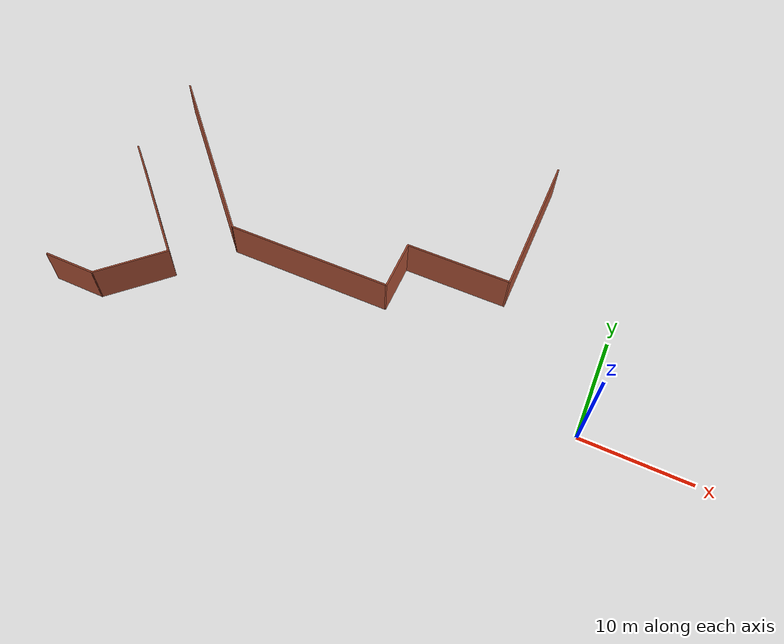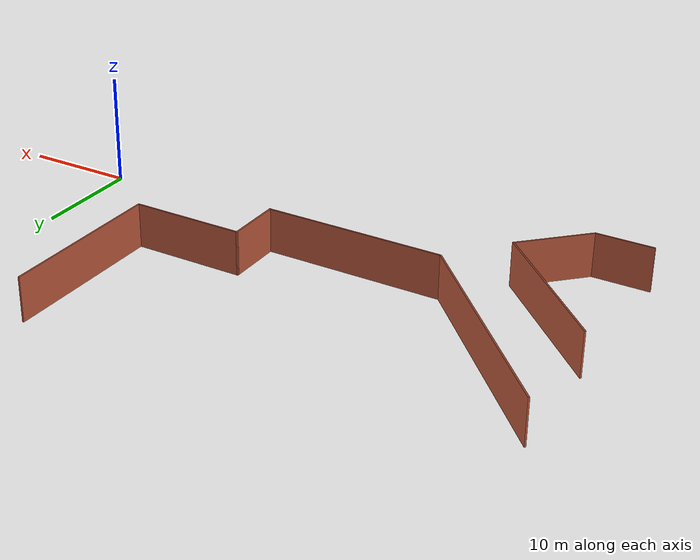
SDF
<?xml version='1.0'?>
<sdf version='1.6'>
  <model name='wall_others_1'>
    <pose frame=''>-25.053 9.98447 0 0 -0 0</pose>
    <link name='Wall_11'>
      <collision name='Wall_11_Collision'>
        <geometry>
          <box>
            <size>20.6683 0.15 4</size>
          </box>
        </geometry>
        <pose frame=''>0 0 2 0 -0 0</pose>
      </collision>
      <visual name='Wall_11_Visual'>
        <pose frame=''>0 0 2 0 -0 0</pose>
        <geometry>
          <box>
            <size>20.6683 0.15 4</size>
          </box>
        </geometry>
        <material>
          <script>
            <uri>file://media/materials/scripts/gazebo.material</uri>
            <name>Gazebo/Bricks</name>
          </script>
          <ambient>1 1 1 1</ambient>
        </material>
        <meta>
          <layer>0</layer>
        </meta>
      </visual>
      <pose frame=''>-17.947 2.51553 0 0 -0 -0.819867</pose>
    </link>
    <link name='Wall_12'>
      <collision name='Wall_12_Collision'>
        <geometry>
          <box>
            <size>16.15 0.15 4</size>
          </box>
        </geometry>
        <pose frame=''>0 0 2 0 -0 0</pose>
      </collision>
      <visual name='Wall_12_Visual'>
        <pose frame=''>0 0 2 0 -0 0</pose>
        <geometry>
          <box>
            <size>16.15 0.15 4</size>
          </box>
        </geometry>
        <material>
          <script>
            <uri>file://media/materials/scripts/gazebo.material</uri>
            <name>Gazebo/Bricks</name>
          </script>
          <ambient>1 1 1 1</ambient>
        </material>
        <meta>
          <layer>0</layer>
        </meta>
      </visual>
      <pose frame=''>-2.94697 -4.98447 0 0 -0 0</pose>
    </link>
    <link name='Wall_13'>
      <collision name='Wall_13_Collision'>
        <geometry>
          <box>
            <size>5.15 0.15 4</size>
          </box>
        </geometry>
        <pose frame=''>0 0 2 0 -0 0</pose>
      </collision>
      <visual name='Wall_13_Visual'>
        <pose frame=''>0 0 2 0 -0 0</pose>
        <geometry>
          <box>
            <size>5.15 0.15 4</size>
          </box>
        </geometry>
        <material>
          <script>
            <uri>file://media/materials/scripts/gazebo.material</uri>
            <name>Gazebo/Bricks</name>
          </script>
          <ambient>1 1 1 1</ambient>
        </material>
        <meta>
          <layer>0</layer>
        </meta>
      </visual>
      <pose frame=''>5.05303 -2.48447 0 0 -0 1.5708</pose>
    </link>
    <link name='Wall_14'>
      <collision name='Wall_14_Collision'>
        <geometry>
          <box>
            <size>10.15 0.15 4</size>
          </box>
        </geometry>
        <pose frame=''>0 0 2 0 -0 0</pose>
      </collision>
      <visual name='Wall_14_Visual'>
        <pose frame=''>0 0 2 0 -0 0</pose>
        <geometry>
          <box>
            <size>10.15 0.15 4</size>
          </box>
        </geometry>
        <material>
          <script>
            <uri>file://media/materials/scripts/gazebo.material</uri>
            <name>Gazebo/Bricks</name>
          </script>
          <ambient>1 1 1 1</ambient>
        </material>
        <meta>
          <layer>0</layer>
        </meta>
      </visual>
      <pose frame=''>10.053 0.015533 0 0 -0 0</pose>
    </link>
    <link name='Wall_16'>
      <collision name='Wall_16_Collision'>
        <geometry>
          <box>
            <size>15.15 0.15 4</size>
          </box>
        </geometry>
        <pose frame=''>0 0 2 0 -0 0</pose>
      </collision>
      <visual name='Wall_16_Visual'>
        <pose frame=''>0 0 2 0 -0 0</pose>
        <geometry>
          <box>
            <size>15.15 0.15 4</size>
          </box>
        </geometry>
        <material>
          <script>
            <uri>file://media/materials/scripts/gazebo.material</uri>
            <name>Gazebo/Bricks</name>
          </script>
          <ambient>1 1 1 1</ambient>
        </material>
        <meta>
          <layer>0</layer>
        </meta>
      </visual>
      <pose frame=''>15.053 7.51553 0 0 -0 1.5708</pose>
    </link>
    <link name='Wall_19'>
      <collision name='Wall_19_Collision'>
        <geometry>
          <box>
            <size>14.2921 0.15 4</size>
          </box>
        </geometry>
        <pose frame=''>0 0 2 0 -0 0</pose>
      </collision>
      <visual name='Wall_19_Visual'>
        <pose frame=''>0 0 2 0 -0 0</pose>
        <geometry>
          <box>
            <size>14.2921 0.15 4</size>
          </box>
        </geometry>
        <material>
          <script>
            <uri>file://media/materials/scripts/gazebo.material</uri>
            <name>Gazebo/Bricks</name>
          </script>
          <ambient>1 1 1 1</ambient>
        </material>
        <meta>
          <layer>0</layer>
        </meta>
      </visual>
      <pose frame=''>-19.947 -4.98447 0 0 -0 -0.785398</pose>
    </link>
    <link name='Wall_20'>
      <collision name='Wall_20_Collision'>
        <geometry>
          <box>
            <size>7.22107 0.15 4</size>
          </box>
        </geometry>
        <pose frame=''>0 0 2 0 -0 0</pose>
      </collision>
      <visual name='Wall_20_Visual'>
        <pose frame=''>0 0 2 0 -0 0</pose>
        <geometry>
          <box>
            <size>7.22107 0.15 4</size>
          </box>
        </geometry>
        <material>
          <script>
            <uri>file://media/materials/scripts/gazebo.material</uri>
            <name>Gazebo/Bricks</name>
          </script>
          <ambient>1 1 1 1</ambient>
        </material>
        <meta>
          <layer>0</layer>
        </meta>
      </visual>
      <pose frame=''>-17.447 -12.4845 0 0 -0 -2.35619</pose>
    </link>
    <link name='Wall_21'>
      <collision name='Wall_21_Collision'>
        <geometry>
          <box>
            <size>5.15 0.15 4</size>
          </box>
        </geometry>
        <pose frame=''>0 0 2 0 -0 0</pose>
      </collision>
      <visual name='Wall_21_Visual'>
        <pose frame=''>0 0 2 0 -0 0</pose>
        <geometry>
          <box>
            <size>5.15 0.15 4</size>
          </box>
        </geometry>
        <material>
          <script>
            <uri>file://media/materials/scripts/gazebo.material</uri>
            <name>Gazebo/Bricks</name>
          </script>
          <ambient>1 1 1 1</ambient>
        </material>
        <meta>
          <layer>0</layer>
        </meta>
      </visual>
      <pose frame=''>-22.447 -14.9845 0 0 -0 3.14159</pose>
    </link>
    <static>1</static>
  </model>
</sdf>
